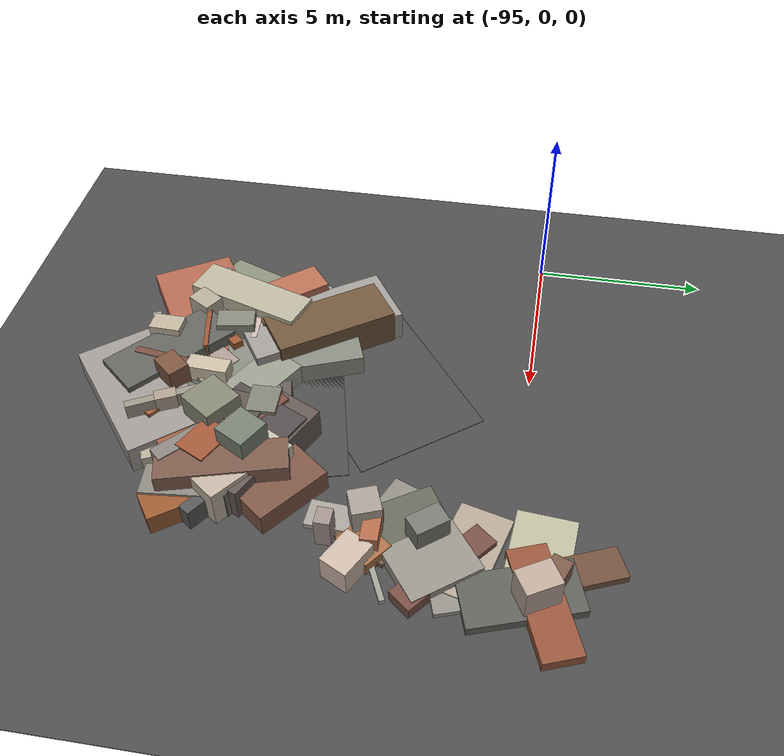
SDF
<sdf version="1.6">
 <world name="navitas_arena">
  <model name="ground_plane">
   <static>true</static>
   <link name="link">
    <collision name="collision">
     <geometry><plane><normal>0 0 1</normal><size>400 400</size></plane></geometry>
     <surface><friction><ode><mu>0.800</mu><mu2>0.800</mu2></ode></friction></surface>
    </collision>
    <visual name="visual">
     <cast_shadows>false</cast_shadows>
     <geometry><plane><normal>0 0 1</normal><size>400 400</size></plane></geometry>
     <material>
      <specular>0.04 0.04 0.04 1</specular>
      <script>
       <uri>file://media/materials/scripts/navitas_asphalt.material</uri>
       <name>Navitas/RealArenaAsphalt</name>
      </script>
     </material>
    </visual>
   </link>
  </model>
  <model name="gd_kolay">
   <static>true</static>
   <pose>-90.000 0.000 0.010 0 0 0.000</pose>
   <link name="link">
    <collision name="col"><geometry><box><size>50.000 50.000 0.020</size></box></geometry></collision>
    <visual name="vis">
     <geometry><box><size>50.000 50.000 0.020</size></box></geometry>
     <material>
      <specular>0.04 0.04 0.04 1</specular>
      <script>
       <uri>file://media/materials/scripts/navitas_asphalt.material</uri>
       <name>Navitas/RealArenaAsphalt</name>
      </script>
     </material>
    </visual>
   </link>
  </model>
  <model name="road_kolay_2_5">
   <static>true</static>
   <pose>-88.152 -7.431 0.040 0 0 1.818</pose>
   <link name="link">
    <collision name="col"><geometry><box><size>4.540 6.000 0.020</size></box></geometry></collision>
    <visual name="vis">
     <geometry><box><size>4.540 6.000 0.020</size></box></geometry>
     <material>
      <specular>0.04 0.04 0.04 1</specular>
      <script>
       <uri>file://media/materials/scripts/navitas_asphalt.material</uri>
       <name>Navitas/RealArenaAsphalt</name>
      </script>
     </material>
    </visual>
   </link>
  </model>
  <model name="road_kolay_2_6">
   <static>true</static>
   <pose>-89.501 -4.500 0.040 0 0 2.229</pose>
   <link name="link">
    <collision name="col"><geometry><box><size>3.850 6.000 0.020</size></box></geometry></collision>
    <visual name="vis">
     <geometry><box><size>3.850 6.000 0.020</size></box></geometry>
     <material>
      <specular>0.04 0.04 0.04 1</specular>
      <script>
       <uri>file://media/materials/scripts/navitas_asphalt.material</uri>
       <name>Navitas/RealArenaAsphalt</name>
      </script>
     </material>
    </visual>
   </link>
  </model>
  <model name="blk_kolay_2_0_0">
   <static>true</static>
   <pose>-85.315 -7.943 0.000 0 0 0</pose>
   <link name="link">
    <collision name="col_0">
     <pose>-0.198 0.999 0.305 0.000 0.000 2.167</pose>
     <geometry><box><size>0.587 0.983 0.610</size></box></geometry>
    </collision>
    <visual name="vis_0">
     <pose>-0.198 0.999 0.305 0.000 0.000 2.167</pose>
     <geometry><box><size>0.587 0.983 0.610</size></box></geometry>
     <material>
      <ambient>0.66 0.42 0.31 1</ambient>
      <diffuse>0.71 0.46 0.33 1</diffuse>
      <specular>0.05 0.05 0.045 1</specular>
     </material>
    </visual>
    <collision name="col_1">
     <pose>0.869 -0.635 0.352 0.000 0.000 1.660</pose>
     <geometry><box><size>2.179 0.947 0.704</size></box></geometry>
    </collision>
    <visual name="vis_1">
     <pose>0.869 -0.635 0.352 0.000 0.000 1.660</pose>
     <geometry><box><size>2.179 0.947 0.704</size></box></geometry>
     <material>
      <ambient>0.50 0.49 0.46 1</ambient>
      <diffuse>0.54 0.53 0.50 1</diffuse>
      <specular>0.05 0.05 0.045 1</specular>
     </material>
    </visual>
    <collision name="col_2">
     <pose>0.815 0.293 0.340 0.000 0.000 2.552</pose>
     <geometry><box><size>2.303 0.361 0.681</size></box></geometry>
    </collision>
    <visual name="vis_2">
     <pose>0.815 0.293 0.340 0.000 0.000 2.552</pose>
     <geometry><box><size>2.303 0.361 0.681</size></box></geometry>
     <material>
      <ambient>0.32 0.31 0.31 1</ambient>
      <diffuse>0.34 0.34 0.33 1</diffuse>
      <specular>0.05 0.05 0.045 1</specular>
     </material>
    </visual>
    <collision name="col_3">
     <pose>0.039 -0.951 0.614 0.000 0.000 2.403</pose>
     <geometry><box><size>1.432 0.464 1.229</size></box></geometry>
    </collision>
    <visual name="vis_3">
     <pose>0.039 -0.951 0.614 0.000 0.000 2.403</pose>
     <geometry><box><size>1.432 0.464 1.229</size></box></geometry>
     <material>
      <ambient>0.50 0.48 0.47 1</ambient>
      <diffuse>0.54 0.52 0.50 1</diffuse>
      <specular>0.05 0.05 0.045 1</specular>
     </material>
    </visual>
    <collision name="col_4">
     <pose>-0.143 -0.994 0.421 0.000 0.000 3.793</pose>
     <geometry><box><size>1.599 1.050 0.842</size></box></geometry>
    </collision>
    <visual name="vis_4">
     <pose>-0.143 -0.994 0.421 0.000 0.000 3.793</pose>
     <geometry><box><size>1.599 1.050 0.842</size></box></geometry>
     <material>
      <ambient>0.60 0.34 0.24 1</ambient>
      <diffuse>0.65 0.37 0.26 1</diffuse>
      <specular>0.05 0.05 0.045 1</specular>
     </material>
    </visual>
    <collision name="col_5">
     <pose>0.865 0.361 0.454 0.000 0.000 4.247</pose>
     <geometry><box><size>0.927 0.609 0.908</size></box></geometry>
    </collision>
    <visual name="vis_5">
     <pose>0.865 0.361 0.454 0.000 0.000 4.247</pose>
     <geometry><box><size>0.927 0.609 0.908</size></box></geometry>
     <material>
      <ambient>0.38 0.38 0.35 1</ambient>
      <diffuse>0.41 0.41 0.38 1</diffuse>
      <specular>0.05 0.05 0.045 1</specular>
     </material>
    </visual>
    <collision name="col_6">
     <pose>0.225 0.403 0.340 0.000 0.000 2.451</pose>
     <geometry><box><size>0.533 0.520 0.681</size></box></geometry>
    </collision>
    <visual name="vis_6">
     <pose>0.225 0.403 0.340 0.000 0.000 2.451</pose>
     <geometry><box><size>0.533 0.520 0.681</size></box></geometry>
     <material>
      <ambient>0.40 0.25 0.18 1</ambient>
      <diffuse>0.43 0.27 0.19 1</diffuse>
      <specular>0.05 0.05 0.045 1</specular>
     </material>
    </visual>
    <collision name="col_7">
     <pose>0.365 0.301 0.597 0.000 0.000 1.843</pose>
     <geometry><box><size>3.477 1.040 1.195</size></box></geometry>
    </collision>
    <visual name="vis_7">
     <pose>0.365 0.301 0.597 0.000 0.000 1.843</pose>
     <geometry><box><size>3.477 1.040 1.195</size></box></geometry>
     <material>
      <ambient>0.46 0.33 0.28 1</ambient>
      <diffuse>0.49 0.36 0.30 1</diffuse>
      <specular>0.05 0.05 0.045 1</specular>
     </material>
    </visual>
   </link>
  </model>
  <model name="blk_kolay_2_0_1">
   <static>true</static>
   <pose>-86.365 -8.200 0.000 0 0 0</pose>
   <link name="link">
    <collision name="col_0">
     <pose>1.562 0.671 0.571 0.000 0.000 2.498</pose>
     <geometry><box><size>1.777 1.294 1.142</size></box></geometry>
    </collision>
    <visual name="vis_0">
     <pose>1.562 0.671 0.571 0.000 0.000 2.498</pose>
     <geometry><box><size>1.777 1.294 1.142</size></box></geometry>
     <material>
      <ambient>0.70 0.65 0.59 1</ambient>
      <diffuse>0.76 0.70 0.64 1</diffuse>
      <specular>0.05 0.05 0.045 1</specular>
     </material>
    </visual>
    <collision name="col_1">
     <pose>1.915 0.052 0.316 0.000 0.000 2.199</pose>
     <geometry><box><size>3.105 0.964 0.631</size></box></geometry>
    </collision>
    <visual name="vis_1">
     <pose>1.915 0.052 0.316 0.000 0.000 2.199</pose>
     <geometry><box><size>3.105 0.964 0.631</size></box></geometry>
     <material>
      <ambient>0.57 0.33 0.18 1</ambient>
      <diffuse>0.61 0.36 0.20 1</diffuse>
      <specular>0.05 0.05 0.045 1</specular>
     </material>
    </visual>
    <collision name="col_2">
     <pose>0.878 1.244 0.348 0.000 0.000 0.914</pose>
     <geometry><box><size>3.395 2.181 0.697</size></box></geometry>
    </collision>
    <visual name="vis_2">
     <pose>0.878 1.244 0.348 0.000 0.000 0.914</pose>
     <geometry><box><size>3.395 2.181 0.697</size></box></geometry>
     <material>
      <ambient>0.47 0.32 0.25 1</ambient>
      <diffuse>0.50 0.34 0.27 1</diffuse>
      <specular>0.05 0.05 0.045 1</specular>
     </material>
    </visual>
    <collision name="col_3">
     <pose>-0.402 -1.551 0.668 0.000 0.000 2.013</pose>
     <geometry><box><size>0.596 0.353 1.335</size></box></geometry>
    </collision>
    <visual name="vis_3">
     <pose>-0.402 -1.551 0.668 0.000 0.000 2.013</pose>
     <geometry><box><size>0.596 0.353 1.335</size></box></geometry>
     <material>
      <ambient>0.63 0.57 0.52 1</ambient>
      <diffuse>0.68 0.62 0.56 1</diffuse>
      <specular>0.05 0.05 0.045 1</specular>
     </material>
    </visual>
    <collision name="col_4">
     <pose>-0.777 1.104 0.597 0.000 0.000 1.609</pose>
     <geometry><box><size>0.827 0.941 1.194</size></box></geometry>
    </collision>
    <visual name="vis_4">
     <pose>-0.777 1.104 0.597 0.000 0.000 1.609</pose>
     <geometry><box><size>0.827 0.941 1.194</size></box></geometry>
     <material>
      <ambient>0.46 0.47 0.42 1</ambient>
      <diffuse>0.50 0.51 0.45 1</diffuse>
      <specular>0.05 0.05 0.045 1</specular>
     </material>
    </visual>
    <collision name="col_5">
     <pose>-0.308 -0.213 0.792 0.000 0.000 0.963</pose>
     <geometry><box><size>1.133 1.122 1.585</size></box></geometry>
    </collision>
    <visual name="vis_5">
     <pose>-0.308 -0.213 0.792 0.000 0.000 0.963</pose>
     <geometry><box><size>1.133 1.122 1.585</size></box></geometry>
     <material>
      <ambient>0.50 0.49 0.43 1</ambient>
      <diffuse>0.53 0.53 0.46 1</diffuse>
      <specular>0.05 0.05 0.045 1</specular>
     </material>
    </visual>
    <collision name="col_6">
     <pose>1.522 -0.399 0.469 0.000 0.000 2.256</pose>
     <geometry><box><size>0.531 0.427 0.938</size></box></geometry>
    </collision>
    <visual name="vis_6">
     <pose>1.522 -0.399 0.469 0.000 0.000 2.256</pose>
     <geometry><box><size>0.531 0.427 0.938</size></box></geometry>
     <material>
      <ambient>0.30 0.32 0.30 1</ambient>
      <diffuse>0.32 0.35 0.33 1</diffuse>
      <specular>0.05 0.05 0.045 1</specular>
     </material>
    </visual>
    <collision name="col_7">
     <pose>-0.463 -1.381 0.657 0.000 0.000 2.070</pose>
     <geometry><box><size>2.567 0.230 1.313</size></box></geometry>
    </collision>
    <visual name="vis_7">
     <pose>-0.463 -1.381 0.657 0.000 0.000 2.070</pose>
     <geometry><box><size>2.567 0.230 1.313</size></box></geometry>
     <material>
      <ambient>0.56 0.54 0.49 1</ambient>
      <diffuse>0.61 0.58 0.53 1</diffuse>
      <specular>0.05 0.05 0.045 1</specular>
     </material>
    </visual>
   </link>
  </model>
  <model name="blk_kolay_2_0_2">
   <static>true</static>
   <pose>-90.827 -7.162 0.000 0 0 0</pose>
   <link name="link">
    <collision name="col_0">
     <pose>-1.071 -0.148 0.598 0.000 0.000 2.263</pose>
     <geometry><box><size>1.614 0.990 1.197</size></box></geometry>
    </collision>
    <visual name="vis_0">
     <pose>-1.071 -0.148 0.598 0.000 0.000 2.263</pose>
     <geometry><box><size>1.614 0.990 1.197</size></box></geometry>
     <material>
      <ambient>0.66 0.41 0.31 1</ambient>
      <diffuse>0.72 0.44 0.33 1</diffuse>
      <specular>0.05 0.05 0.045 1</specular>
     </material>
    </visual>
    <collision name="col_1">
     <pose>-0.842 0.537 0.400 0.000 0.000 2.474</pose>
     <geometry><box><size>1.370 0.626 0.800</size></box></geometry>
    </collision>
    <visual name="vis_1">
     <pose>-0.842 0.537 0.400 0.000 0.000 2.474</pose>
     <geometry><box><size>1.370 0.626 0.800</size></box></geometry>
     <material>
      <ambient>0.62 0.60 0.55 1</ambient>
      <diffuse>0.67 0.64 0.60 1</diffuse>
      <specular>0.05 0.05 0.045 1</specular>
     </material>
    </visual>
    <collision name="col_2">
     <pose>-0.028 0.129 0.527 0.000 0.000 2.124</pose>
     <geometry><box><size>2.256 0.281 1.053</size></box></geometry>
    </collision>
    <visual name="vis_2">
     <pose>-0.028 0.129 0.527 0.000 0.000 2.124</pose>
     <geometry><box><size>2.256 0.281 1.053</size></box></geometry>
     <material>
      <ambient>0.57 0.35 0.24 1</ambient>
      <diffuse>0.62 0.37 0.26 1</diffuse>
      <specular>0.05 0.05 0.045 1</specular>
     </material>
    </visual>
    <collision name="col_3">
     <pose>-0.038 0.749 0.477 0.000 0.000 2.163</pose>
     <geometry><box><size>4.559 1.956 0.955</size></box></geometry>
    </collision>
    <visual name="vis_3">
     <pose>-0.038 0.749 0.477 0.000 0.000 2.163</pose>
     <geometry><box><size>4.559 1.956 0.955</size></box></geometry>
     <material>
      <ambient>0.59 0.56 0.55 1</ambient>
      <diffuse>0.63 0.61 0.59 1</diffuse>
      <specular>0.05 0.05 0.045 1</specular>
     </material>
    </visual>
    <collision name="col_4">
     <pose>0.099 1.082 0.564 0.000 0.000 2.175</pose>
     <geometry><box><size>3.584 1.512 1.128</size></box></geometry>
    </collision>
    <visual name="vis_4">
     <pose>0.099 1.082 0.564 0.000 0.000 2.175</pose>
     <geometry><box><size>3.584 1.512 1.128</size></box></geometry>
     <material>
      <ambient>0.41 0.31 0.21 1</ambient>
      <diffuse>0.44 0.34 0.23 1</diffuse>
      <specular>0.05 0.05 0.045 1</specular>
     </material>
    </visual>
    <collision name="col_5">
     <pose>0.827 0.143 0.334 0.000 0.000 1.944</pose>
     <geometry><box><size>3.807 2.317 0.668</size></box></geometry>
    </collision>
    <visual name="vis_5">
     <pose>0.827 0.143 0.334 0.000 0.000 1.944</pose>
     <geometry><box><size>3.807 2.317 0.668</size></box></geometry>
     <material>
      <ambient>0.49 0.50 0.46 1</ambient>
      <diffuse>0.53 0.54 0.50 1</diffuse>
      <specular>0.05 0.05 0.045 1</specular>
     </material>
    </visual>
    <collision name="col_6">
     <pose>0.119 0.605 0.304 0.000 0.000 2.405</pose>
     <geometry><box><size>2.572 1.061 0.608</size></box></geometry>
    </collision>
    <visual name="vis_6">
     <pose>0.119 0.605 0.304 0.000 0.000 2.405</pose>
     <geometry><box><size>2.572 1.061 0.608</size></box></geometry>
     <material>
      <ambient>0.64 0.37 0.26 1</ambient>
      <diffuse>0.69 0.40 0.28 1</diffuse>
      <specular>0.05 0.05 0.045 1</specular>
     </material>
    </visual>
    <collision name="col_7">
     <pose>0.007 1.074 0.523 0.000 0.000 2.752</pose>
     <geometry><box><size>1.055 1.062 1.046</size></box></geometry>
    </collision>
    <visual name="vis_7">
     <pose>0.007 1.074 0.523 0.000 0.000 2.752</pose>
     <geometry><box><size>1.055 1.062 1.046</size></box></geometry>
     <material>
      <ambient>0.36 0.35 0.32 1</ambient>
      <diffuse>0.39 0.38 0.34 1</diffuse>
      <specular>0.05 0.05 0.045 1</specular>
     </material>
    </visual>
   </link>
  </model>
  <model name="blk_kolay_2_0_3">
   <static>true</static>
   <pose>-89.910 -9.430 0.000 0 0 0</pose>
   <link name="link">
    <collision name="col_0">
     <pose>0.355 -1.213 0.636 0.000 0.000 1.539</pose>
     <geometry><box><size>0.918 0.594 1.272</size></box></geometry>
    </collision>
    <visual name="vis_0">
     <pose>0.355 -1.213 0.636 0.000 0.000 1.539</pose>
     <geometry><box><size>0.918 0.594 1.272</size></box></geometry>
     <material>
      <ambient>0.70 0.65 0.57 1</ambient>
      <diffuse>0.75 0.70 0.61 1</diffuse>
      <specular>0.05 0.05 0.045 1</specular>
     </material>
    </visual>
    <collision name="col_1">
     <pose>-1.874 -0.137 0.391 0.000 0.000 0.237</pose>
     <geometry><box><size>1.966 0.217 0.782</size></box></geometry>
    </collision>
    <visual name="vis_1">
     <pose>-1.874 -0.137 0.391 0.000 0.000 0.237</pose>
     <geometry><box><size>1.966 0.217 0.782</size></box></geometry>
     <material>
      <ambient>0.58 0.58 0.55 1</ambient>
      <diffuse>0.62 0.62 0.60 1</diffuse>
      <specular>0.05 0.05 0.045 1</specular>
     </material>
    </visual>
    <collision name="col_2">
     <pose>0.850 -1.314 0.511 0.000 0.000 0.388</pose>
     <geometry><box><size>2.415 0.251 1.022</size></box></geometry>
    </collision>
    <visual name="vis_2">
     <pose>0.850 -1.314 0.511 0.000 0.000 0.388</pose>
     <geometry><box><size>2.415 0.251 1.022</size></box></geometry>
     <material>
      <ambient>0.61 0.62 0.56 1</ambient>
      <diffuse>0.65 0.67 0.60 1</diffuse>
      <specular>0.05 0.05 0.045 1</specular>
     </material>
    </visual>
    <collision name="col_3">
     <pose>0.552 -1.300 0.428 0.000 0.000 1.087</pose>
     <geometry><box><size>0.572 0.509 0.856</size></box></geometry>
    </collision>
    <visual name="vis_3">
     <pose>0.552 -1.300 0.428 0.000 0.000 1.087</pose>
     <geometry><box><size>0.572 0.509 0.856</size></box></geometry>
     <material>
      <ambient>0.60 0.57 0.51 1</ambient>
      <diffuse>0.65 0.61 0.55 1</diffuse>
      <specular>0.05 0.05 0.045 1</specular>
     </material>
    </visual>
    <collision name="col_4">
     <pose>0.014 0.416 0.449 0.000 0.000 0.817</pose>
     <geometry><box><size>1.391 0.309 0.897</size></box></geometry>
    </collision>
    <visual name="vis_4">
     <pose>0.014 0.416 0.449 0.000 0.000 0.817</pose>
     <geometry><box><size>1.391 0.309 0.897</size></box></geometry>
     <material>
      <ambient>0.57 0.32 0.19 1</ambient>
      <diffuse>0.61 0.35 0.21 1</diffuse>
      <specular>0.05 0.05 0.045 1</specular>
     </material>
    </visual>
    <collision name="col_5">
     <pose>1.192 0.280 0.345 0.000 0.000 0.934</pose>
     <geometry><box><size>1.019 1.299 0.690</size></box></geometry>
    </collision>
    <visual name="vis_5">
     <pose>1.192 0.280 0.345 0.000 0.000 0.934</pose>
     <geometry><box><size>1.019 1.299 0.690</size></box></geometry>
     <material>
      <ambient>0.62 0.57 0.54 1</ambient>
      <diffuse>0.67 0.61 0.58 1</diffuse>
      <specular>0.05 0.05 0.045 1</specular>
     </material>
    </visual>
    <collision name="col_6">
     <pose>-0.678 1.271 0.482 0.000 0.000 0.057</pose>
     <geometry><box><size>1.885 0.176 0.963</size></box></geometry>
    </collision>
    <visual name="vis_6">
     <pose>-0.678 1.271 0.482 0.000 0.000 0.057</pose>
     <geometry><box><size>1.885 0.176 0.963</size></box></geometry>
     <material>
      <ambient>0.74 0.67 0.64 1</ambient>
      <diffuse>0.80 0.73 0.69 1</diffuse>
      <specular>0.05 0.05 0.045 1</specular>
     </material>
    </visual>
   </link>
  </model>
  <model name="blk_kolay_2_0_4">
   <static>true</static>
   <pose>-90.844 -9.308 0.000 0 0 0</pose>
   <link name="link">
    <collision name="col_0">
     <pose>-0.708 0.701 0.408 0.000 0.000 0.052</pose>
     <geometry><box><size>1.131 1.153 0.817</size></box></geometry>
    </collision>
    <visual name="vis_0">
     <pose>-0.708 0.701 0.408 0.000 0.000 0.052</pose>
     <geometry><box><size>1.131 1.153 0.817</size></box></geometry>
     <material>
      <ambient>0.56 0.33 0.19 1</ambient>
      <diffuse>0.61 0.35 0.20 1</diffuse>
      <specular>0.05 0.05 0.045 1</specular>
     </material>
    </visual>
    <collision name="col_1">
     <pose>0.097 0.009 0.363 0.000 0.000 -0.740</pose>
     <geometry><box><size>0.874 0.904 0.726</size></box></geometry>
    </collision>
    <visual name="vis_1">
     <pose>0.097 0.009 0.363 0.000 0.000 -0.740</pose>
     <geometry><box><size>0.874 0.904 0.726</size></box></geometry>
     <material>
      <ambient>0.36 0.33 0.31 1</ambient>
      <diffuse>0.39 0.36 0.33 1</diffuse>
      <specular>0.05 0.05 0.045 1</specular>
     </material>
    </visual>
    <collision name="col_2">
     <pose>-0.382 0.743 0.632 0.000 0.000 1.254</pose>
     <geometry><box><size>3.546 1.147 1.264</size></box></geometry>
    </collision>
    <visual name="vis_2">
     <pose>-0.382 0.743 0.632 0.000 0.000 1.254</pose>
     <geometry><box><size>3.546 1.147 1.264</size></box></geometry>
     <material>
      <ambient>0.67 0.66 0.57 1</ambient>
      <diffuse>0.73 0.71 0.62 1</diffuse>
      <specular>0.05 0.05 0.045 1</specular>
     </material>
    </visual>
    <collision name="col_3">
     <pose>-0.196 -0.611 0.330 0.000 0.000 0.556</pose>
     <geometry><box><size>4.096 2.383 0.659</size></box></geometry>
    </collision>
    <visual name="vis_3">
     <pose>-0.196 -0.611 0.330 0.000 0.000 0.556</pose>
     <geometry><box><size>4.096 2.383 0.659</size></box></geometry>
     <material>
      <ambient>0.65 0.38 0.29 1</ambient>
      <diffuse>0.70 0.41 0.32 1</diffuse>
      <specular>0.05 0.05 0.045 1</specular>
     </material>
    </visual>
    <collision name="col_4">
     <pose>0.551 -0.304 0.555 0.000 0.000 0.210</pose>
     <geometry><box><size>2.780 0.140 1.110</size></box></geometry>
    </collision>
    <visual name="vis_4">
     <pose>0.551 -0.304 0.555 0.000 0.000 0.210</pose>
     <geometry><box><size>2.780 0.140 1.110</size></box></geometry>
     <material>
      <ambient>0.56 0.31 0.19 1</ambient>
      <diffuse>0.60 0.33 0.21 1</diffuse>
      <specular>0.05 0.05 0.045 1</specular>
     </material>
    </visual>
    <collision name="col_5">
     <pose>-1.008 0.065 0.320 0.000 0.000 -0.364</pose>
     <geometry><box><size>2.549 1.748 0.639</size></box></geometry>
    </collision>
    <visual name="vis_5">
     <pose>-1.008 0.065 0.320 0.000 0.000 -0.364</pose>
     <geometry><box><size>2.549 1.748 0.639</size></box></geometry>
     <material>
      <ambient>0.50 0.52 0.44 1</ambient>
      <diffuse>0.54 0.56 0.48 1</diffuse>
      <specular>0.05 0.05 0.045 1</specular>
     </material>
    </visual>
    <collision name="col_6">
     <pose>0.749 0.584 0.613 0.000 0.000 0.176</pose>
     <geometry><box><size>0.652 1.096 1.226</size></box></geometry>
    </collision>
    <visual name="vis_6">
     <pose>0.749 0.584 0.613 0.000 0.000 0.176</pose>
     <geometry><box><size>0.652 1.096 1.226</size></box></geometry>
     <material>
      <ambient>0.49 0.49 0.45 1</ambient>
      <diffuse>0.53 0.53 0.48 1</diffuse>
      <specular>0.05 0.05 0.045 1</specular>
     </material>
    </visual>
    <collision name="col_7">
     <pose>0.096 -0.540 0.644 0.000 0.000 -0.552</pose>
     <geometry><box><size>0.610 0.781 1.288</size></box></geometry>
    </collision>
    <visual name="vis_7">
     <pose>0.096 -0.540 0.644 0.000 0.000 -0.552</pose>
     <geometry><box><size>0.610 0.781 1.288</size></box></geometry>
     <material>
      <ambient>0.66 0.62 0.56 1</ambient>
      <diffuse>0.71 0.67 0.60 1</diffuse>
      <specular>0.05 0.05 0.045 1</specular>
     </material>
    </visual>
    <collision name="col_8">
     <pose>0.297 0.216 0.383 0.000 0.000 1.120</pose>
     <geometry><box><size>1.297 1.384 0.766</size></box></geometry>
    </collision>
    <visual name="vis_8">
     <pose>0.297 0.216 0.383 0.000 0.000 1.120</pose>
     <geometry><box><size>1.297 1.384 0.766</size></box></geometry>
     <material>
      <ambient>0.62 0.37 0.24 1</ambient>
      <diffuse>0.67 0.40 0.26 1</diffuse>
      <specular>0.05 0.05 0.045 1</specular>
     </material>
    </visual>
   </link>
  </model>
  <model name="blk_kolay_2_0_6">
   <static>true</static>
   <pose>-87.660 -9.921 0.000 0 0 0</pose>
   <link name="link">
    <collision name="col_0">
     <pose>-0.029 0.122 0.423 0.000 0.000 1.356</pose>
     <geometry><box><size>1.251 0.238 0.846</size></box></geometry>
    </collision>
    <visual name="vis_0">
     <pose>-0.029 0.122 0.423 0.000 0.000 1.356</pose>
     <geometry><box><size>1.251 0.238 0.846</size></box></geometry>
     <material>
      <ambient>0.41 0.44 0.40 1</ambient>
      <diffuse>0.45 0.47 0.44 1</diffuse>
      <specular>0.05 0.05 0.045 1</specular>
     </material>
    </visual>
    <collision name="col_1">
     <pose>0.309 -0.803 0.433 0.000 0.000 3.836</pose>
     <geometry><box><size>4.184 2.290 0.866</size></box></geometry>
    </collision>
    <visual name="vis_1">
     <pose>0.309 -0.803 0.433 0.000 0.000 3.836</pose>
     <geometry><box><size>4.184 2.290 0.866</size></box></geometry>
     <material>
      <ambient>0.57 0.55 0.54 1</ambient>
      <diffuse>0.62 0.60 0.58 1</diffuse>
      <specular>0.05 0.05 0.045 1</specular>
     </material>
    </visual>
    <collision name="col_2">
     <pose>0.428 -0.147 0.399 0.000 0.000 2.132</pose>
     <geometry><box><size>0.543 0.953 0.797</size></box></geometry>
    </collision>
    <visual name="vis_2">
     <pose>0.428 -0.147 0.399 0.000 0.000 2.132</pose>
     <geometry><box><size>0.543 0.953 0.797</size></box></geometry>
     <material>
      <ambient>0.62 0.57 0.53 1</ambient>
      <diffuse>0.66 0.61 0.58 1</diffuse>
      <specular>0.05 0.05 0.045 1</specular>
     </material>
    </visual>
    <collision name="col_3">
     <pose>-0.724 -0.222 0.533 0.000 0.000 1.424</pose>
     <geometry><box><size>2.241 0.231 1.065</size></box></geometry>
    </collision>
    <visual name="vis_3">
     <pose>-0.724 -0.222 0.533 0.000 0.000 1.424</pose>
     <geometry><box><size>2.241 0.231 1.065</size></box></geometry>
     <material>
      <ambient>0.44 0.30 0.24 1</ambient>
      <diffuse>0.47 0.32 0.26 1</diffuse>
      <specular>0.05 0.05 0.045 1</specular>
     </material>
    </visual>
    <collision name="col_4">
     <pose>-0.150 0.018 0.740 0.000 0.000 2.440</pose>
     <geometry><box><size>0.622 0.811 1.480</size></box></geometry>
    </collision>
    <visual name="vis_4">
     <pose>-0.150 0.018 0.740 0.000 0.000 2.440</pose>
     <geometry><box><size>0.622 0.811 1.480</size></box></geometry>
     <material>
      <ambient>0.45 0.31 0.23 1</ambient>
      <diffuse>0.49 0.33 0.25 1</diffuse>
      <specular>0.05 0.05 0.045 1</specular>
     </material>
    </visual>
    <collision name="col_5">
     <pose>-0.632 0.881 0.544 0.000 0.000 1.511</pose>
     <geometry><box><size>1.211 0.518 1.088</size></box></geometry>
    </collision>
    <visual name="vis_5">
     <pose>-0.632 0.881 0.544 0.000 0.000 1.511</pose>
     <geometry><box><size>1.211 0.518 1.088</size></box></geometry>
     <material>
      <ambient>0.73 0.69 0.60 1</ambient>
      <diffuse>0.79 0.74 0.65 1</diffuse>
      <specular>0.05 0.05 0.045 1</specular>
     </material>
    </visual>
    <collision name="col_6">
     <pose>0.299 0.738 0.283 0.000 0.000 1.290</pose>
     <geometry><box><size>3.106 1.468 0.566</size></box></geometry>
    </collision>
    <visual name="vis_6">
     <pose>0.299 0.738 0.283 0.000 0.000 1.290</pose>
     <geometry><box><size>3.106 1.468 0.566</size></box></geometry>
     <material>
      <ambient>0.34 0.34 0.32 1</ambient>
      <diffuse>0.37 0.37 0.35 1</diffuse>
      <specular>0.05 0.05 0.045 1</specular>
     </material>
    </visual>
    <collision name="col_7">
     <pose>-1.179 -0.441 0.522 0.000 0.000 2.441</pose>
     <geometry><box><size>3.529 1.466 1.045</size></box></geometry>
    </collision>
    <visual name="vis_7">
     <pose>-1.179 -0.441 0.522 0.000 0.000 2.441</pose>
     <geometry><box><size>3.529 1.466 1.045</size></box></geometry>
     <material>
      <ambient>0.36 0.36 0.34 1</ambient>
      <diffuse>0.39 0.39 0.37 1</diffuse>
      <specular>0.05 0.05 0.045 1</specular>
     </material>
    </visual>
    <collision name="col_8">
     <pose>0.106 -0.214 0.281 0.000 0.000 2.706</pose>
     <geometry><box><size>1.290 0.542 0.561</size></box></geometry>
    </collision>
    <visual name="vis_8">
     <pose>0.106 -0.214 0.281 0.000 0.000 2.706</pose>
     <geometry><box><size>1.290 0.542 0.561</size></box></geometry>
     <material>
      <ambient>0.47 0.31 0.24 1</ambient>
      <diffuse>0.50 0.33 0.26 1</diffuse>
      <specular>0.05 0.05 0.045 1</specular>
     </material>
    </visual>
    <collision name="col_9">
     <pose>1.201 -0.178 0.490 0.000 0.000 2.541</pose>
     <geometry><box><size>0.369 0.282 0.980</size></box></geometry>
    </collision>
    <visual name="vis_9">
     <pose>1.201 -0.178 0.490 0.000 0.000 2.541</pose>
     <geometry><box><size>0.369 0.282 0.980</size></box></geometry>
     <material>
      <ambient>0.59 0.36 0.21 1</ambient>
      <diffuse>0.64 0.39 0.23 1</diffuse>
      <specular>0.05 0.05 0.045 1</specular>
     </material>
    </visual>
   </link>
  </model>
  <model name="blk_kolay_2_0_7">
   <static>true</static>
   <pose>-85.875 -8.017 0.000 0 0 0</pose>
   <link name="link">
    <collision name="col_0">
     <pose>-0.009 1.018 0.499 0.000 0.000 2.694</pose>
     <geometry><box><size>3.435 1.583 0.999</size></box></geometry>
    </collision>
    <visual name="vis_0">
     <pose>-0.009 1.018 0.499 0.000 0.000 2.694</pose>
     <geometry><box><size>3.435 1.583 0.999</size></box></geometry>
     <material>
      <ambient>0.37 0.32 0.30 1</ambient>
      <diffuse>0.40 0.35 0.33 1</diffuse>
      <specular>0.05 0.05 0.045 1</specular>
     </material>
    </visual>
    <collision name="col_1">
     <pose>0.044 0.988 0.568 0.000 0.000 1.059</pose>
     <geometry><box><size>2.036 0.853 1.136</size></box></geometry>
    </collision>
    <visual name="vis_1">
     <pose>0.044 0.988 0.568 0.000 0.000 1.059</pose>
     <geometry><box><size>2.036 0.853 1.136</size></box></geometry>
     <material>
      <ambient>0.71 0.70 0.63 1</ambient>
      <diffuse>0.77 0.75 0.68 1</diffuse>
      <specular>0.05 0.05 0.045 1</specular>
     </material>
    </visual>
    <collision name="col_2">
     <pose>-0.899 0.368 0.584 0.000 0.000 1.397</pose>
     <geometry><box><size>1.200 1.054 1.169</size></box></geometry>
    </collision>
    <visual name="vis_2">
     <pose>-0.899 0.368 0.584 0.000 0.000 1.397</pose>
     <geometry><box><size>1.200 1.054 1.169</size></box></geometry>
     <material>
      <ambient>0.34 0.30 0.28 1</ambient>
      <diffuse>0.37 0.33 0.30 1</diffuse>
      <specular>0.05 0.05 0.045 1</specular>
     </material>
    </visual>
    <collision name="col_3">
     <pose>-0.603 0.796 0.547 0.000 0.000 2.541</pose>
     <geometry><box><size>2.272 0.330 1.094</size></box></geometry>
    </collision>
    <visual name="vis_3">
     <pose>-0.603 0.796 0.547 0.000 0.000 2.541</pose>
     <geometry><box><size>2.272 0.330 1.094</size></box></geometry>
     <material>
      <ambient>0.45 0.30 0.23 1</ambient>
      <diffuse>0.48 0.32 0.25 1</diffuse>
      <specular>0.05 0.05 0.045 1</specular>
     </material>
    </visual>
    <collision name="col_4">
     <pose>-0.133 1.092 0.466 0.000 0.000 0.739</pose>
     <geometry><box><size>0.921 1.199 0.932</size></box></geometry>
    </collision>
    <visual name="vis_4">
     <pose>-0.133 1.092 0.466 0.000 0.000 0.739</pose>
     <geometry><box><size>0.921 1.199 0.932</size></box></geometry>
     <material>
      <ambient>0.52 0.48 0.47 1</ambient>
      <diffuse>0.56 0.51 0.51 1</diffuse>
      <specular>0.05 0.05 0.045 1</specular>
     </material>
    </visual>
    <collision name="col_5">
     <pose>-0.655 0.821 0.542 0.000 0.000 1.128</pose>
     <geometry><box><size>2.353 1.554 1.083</size></box></geometry>
    </collision>
    <visual name="vis_5">
     <pose>-0.655 0.821 0.542 0.000 0.000 1.128</pose>
     <geometry><box><size>2.353 1.554 1.083</size></box></geometry>
     <material>
      <ambient>0.31 0.28 0.27 1</ambient>
      <diffuse>0.33 0.30 0.30 1</diffuse>
      <specular>0.05 0.05 0.045 1</specular>
     </material>
    </visual>
    <collision name="col_6">
     <pose>0.403 -0.240 0.624 0.000 0.000 2.682</pose>
     <geometry><box><size>1.185 0.933 1.248</size></box></geometry>
    </collision>
    <visual name="vis_6">
     <pose>0.403 -0.240 0.624 0.000 0.000 2.682</pose>
     <geometry><box><size>1.185 0.933 1.248</size></box></geometry>
     <material>
      <ambient>0.59 0.32 0.20 1</ambient>
      <diffuse>0.63 0.34 0.22 1</diffuse>
      <specular>0.05 0.05 0.045 1</specular>
     </material>
    </visual>
    <collision name="col_7">
     <pose>-0.747 -0.446 0.331 0.000 0.000 1.993</pose>
     <geometry><box><size>4.001 1.828 0.662</size></box></geometry>
    </collision>
    <visual name="vis_7">
     <pose>-0.747 -0.446 0.331 0.000 0.000 1.993</pose>
     <geometry><box><size>4.001 1.828 0.662</size></box></geometry>
     <material>
      <ambient>0.67 0.63 0.55 1</ambient>
      <diffuse>0.72 0.68 0.60 1</diffuse>
      <specular>0.05 0.05 0.045 1</specular>
     </material>
    </visual>
    <collision name="col_8">
     <pose>0.021 -0.053 0.405 0.000 0.000 0.780</pose>
     <geometry><box><size>0.528 0.361 0.811</size></box></geometry>
    </collision>
    <visual name="vis_8">
     <pose>0.021 -0.053 0.405 0.000 0.000 0.780</pose>
     <geometry><box><size>0.528 0.361 0.811</size></box></geometry>
     <material>
      <ambient>0.46 0.33 0.27 1</ambient>
      <diffuse>0.49 0.36 0.29 1</diffuse>
      <specular>0.05 0.05 0.045 1</specular>
     </material>
    </visual>
    <collision name="col_9">
     <pose>0.247 0.770 0.881 0.000 0.000 2.636</pose>
     <geometry><box><size>0.962 0.944 1.762</size></box></geometry>
    </collision>
    <visual name="vis_9">
     <pose>0.247 0.770 0.881 0.000 0.000 2.636</pose>
     <geometry><box><size>0.962 0.944 1.762</size></box></geometry>
     <material>
      <ambient>0.44 0.46 0.41 1</ambient>
      <diffuse>0.47 0.50 0.44 1</diffuse>
      <specular>0.05 0.05 0.045 1</specular>
     </material>
    </visual>
   </link>
  </model>
  <model name="blk_kolay_2_0_8">
   <static>true</static>
   <pose>-86.724 -7.929 0.000 0 0 0</pose>
   <link name="link">
    <collision name="col_0">
     <pose>0.573 1.002 0.467 0.000 0.000 2.179</pose>
     <geometry><box><size>0.522 0.333 0.934</size></box></geometry>
    </collision>
    <visual name="vis_0">
     <pose>0.573 1.002 0.467 0.000 0.000 2.179</pose>
     <geometry><box><size>0.522 0.333 0.934</size></box></geometry>
     <material>
      <ambient>0.66 0.61 0.55 1</ambient>
      <diffuse>0.71 0.66 0.60 1</diffuse>
      <specular>0.05 0.05 0.045 1</specular>
     </material>
    </visual>
    <collision name="col_1">
     <pose>0.494 1.294 0.394 0.000 0.000 1.207</pose>
     <geometry><box><size>0.227 0.503 0.789</size></box></geometry>
    </collision>
    <visual name="vis_1">
     <pose>0.494 1.294 0.394 0.000 0.000 1.207</pose>
     <geometry><box><size>0.227 0.503 0.789</size></box></geometry>
     <material>
      <ambient>0.64 0.37 0.28 1</ambient>
      <diffuse>0.69 0.40 0.31 1</diffuse>
      <specular>0.05 0.05 0.045 1</specular>
     </material>
    </visual>
    <collision name="col_2">
     <pose>-0.970 0.055 0.327 0.000 0.000 1.802</pose>
     <geometry><box><size>2.660 0.851 0.655</size></box></geometry>
    </collision>
    <visual name="vis_2">
     <pose>-0.970 0.055 0.327 0.000 0.000 1.802</pose>
     <geometry><box><size>2.660 0.851 0.655</size></box></geometry>
     <material>
      <ambient>0.37 0.33 0.33 1</ambient>
      <diffuse>0.40 0.36 0.36 1</diffuse>
      <specular>0.05 0.05 0.045 1</specular>
     </material>
    </visual>
    <collision name="col_3">
     <pose>-0.222 -0.103 0.366 0.000 0.000 1.476</pose>
     <geometry><box><size>3.661 1.054 0.733</size></box></geometry>
    </collision>
    <visual name="vis_3">
     <pose>-0.222 -0.103 0.366 0.000 0.000 1.476</pose>
     <geometry><box><size>3.661 1.054 0.733</size></box></geometry>
     <material>
      <ambient>0.33 0.29 0.30 1</ambient>
      <diffuse>0.35 0.32 0.32 1</diffuse>
      <specular>0.05 0.05 0.045 1</specular>
     </material>
    </visual>
    <collision name="col_4">
     <pose>-0.594 -0.247 0.343 0.000 0.000 2.629</pose>
     <geometry><box><size>4.544 1.267 0.685</size></box></geometry>
    </collision>
    <visual name="vis_4">
     <pose>-0.594 -0.247 0.343 0.000 0.000 2.629</pose>
     <geometry><box><size>4.544 1.267 0.685</size></box></geometry>
     <material>
      <ambient>0.56 0.56 0.51 1</ambient>
      <diffuse>0.60 0.61 0.55 1</diffuse>
      <specular>0.05 0.05 0.045 1</specular>
     </material>
    </visual>
    <collision name="col_5">
     <pose>1.025 -0.858 0.304 0.000 0.000 1.026</pose>
     <geometry><box><size>0.562 0.358 0.607</size></box></geometry>
    </collision>
    <visual name="vis_5">
     <pose>1.025 -0.858 0.304 0.000 0.000 1.026</pose>
     <geometry><box><size>0.562 0.358 0.607</size></box></geometry>
     <material>
      <ambient>0.47 0.34 0.27 1</ambient>
      <diffuse>0.51 0.36 0.29 1</diffuse>
      <specular>0.05 0.05 0.045 1</specular>
     </material>
    </visual>
   </link>
  </model>
  <model name="deb_kolay_97">
   <static>true</static>
   <pose>-83.833 -4.139 0.000 0 0 0</pose>
   <link name="link">
    <collision name="col_0">
     <pose>-0.411 0.409 0.585 0.000 0.000 1.940</pose>
     <geometry><box><size>0.781 0.787 1.170</size></box></geometry>
    </collision>
    <visual name="vis_0">
     <pose>-0.411 0.409 0.585 0.000 0.000 1.940</pose>
     <geometry><box><size>0.781 0.787 1.170</size></box></geometry>
     <material>
      <ambient>0.61 0.57 0.53 1</ambient>
      <diffuse>0.66 0.62 0.58 1</diffuse>
      <specular>0.05 0.05 0.045 1</specular>
     </material>
    </visual>
    <collision name="col_1">
     <pose>0.316 0.500 0.216 0.000 0.000 0.919</pose>
     <geometry><box><size>1.148 0.864 0.432</size></box></geometry>
    </collision>
    <visual name="vis_1">
     <pose>0.316 0.500 0.216 0.000 0.000 0.919</pose>
     <geometry><box><size>1.148 0.864 0.432</size></box></geometry>
     <material>
      <ambient>0.62 0.40 0.27 1</ambient>
      <diffuse>0.67 0.44 0.29 1</diffuse>
      <specular>0.05 0.05 0.045 1</specular>
     </material>
    </visual>
    <collision name="col_2">
     <pose>-0.469 0.012 0.090 0.000 0.000 1.511</pose>
     <geometry><box><size>2.337 0.807 0.179</size></box></geometry>
    </collision>
    <visual name="vis_2">
     <pose>-0.469 0.012 0.090 0.000 0.000 1.511</pose>
     <geometry><box><size>2.337 0.807 0.179</size></box></geometry>
     <material>
      <ambient>0.60 0.58 0.55 1</ambient>
      <diffuse>0.65 0.63 0.60 1</diffuse>
      <specular>0.05 0.05 0.045 1</specular>
     </material>
    </visual>
    <collision name="col_3">
     <pose>0.051 -0.550 0.467 0.000 0.000 -0.013</pose>
     <geometry><box><size>0.506 0.425 0.934</size></box></geometry>
    </collision>
    <visual name="vis_3">
     <pose>0.051 -0.550 0.467 0.000 0.000 -0.013</pose>
     <geometry><box><size>0.506 0.425 0.934</size></box></geometry>
     <material>
      <ambient>0.59 0.53 0.50 1</ambient>
      <diffuse>0.64 0.57 0.55 1</diffuse>
      <specular>0.05 0.05 0.045 1</specular>
     </material>
    </visual>
   </link>
  </model>
  <model name="deb_kolay_130">
   <static>true</static>
   <pose>-83.316 -3.924 0.000 0 0 0</pose>
   <link name="link">
    <collision name="col_0">
     <pose>0.308 -0.355 0.156 0.000 0.000 2.482</pose>
     <geometry><box><size>0.456 0.451 0.313</size></box></geometry>
    </collision>
    <visual name="vis_0">
     <pose>0.308 -0.355 0.156 0.000 0.000 2.482</pose>
     <geometry><box><size>0.456 0.451 0.313</size></box></geometry>
     <material>
      <ambient>0.76 0.69 0.62 1</ambient>
      <diffuse>0.82 0.75 0.67 1</diffuse>
      <specular>0.05 0.05 0.045 1</specular>
     </material>
    </visual>
    <collision name="col_1">
     <pose>-0.466 0.450 0.436 0.000 0.000 1.602</pose>
     <geometry><box><size>0.464 0.997 0.873</size></box></geometry>
    </collision>
    <visual name="vis_1">
     <pose>-0.466 0.450 0.436 0.000 0.000 1.602</pose>
     <geometry><box><size>0.464 0.997 0.873</size></box></geometry>
     <material>
      <ambient>0.66 0.40 0.27 1</ambient>
      <diffuse>0.71 0.43 0.30 1</diffuse>
      <specular>0.05 0.05 0.045 1</specular>
     </material>
    </visual>
    <collision name="col_2">
     <pose>0.400 -0.009 0.399 0.000 0.000 2.664</pose>
     <geometry><box><size>1.101 0.819 0.799</size></box></geometry>
    </collision>
    <visual name="vis_2">
     <pose>0.400 -0.009 0.399 0.000 0.000 2.664</pose>
     <geometry><box><size>1.101 0.819 0.799</size></box></geometry>
     <material>
      <ambient>0.75 0.68 0.62 1</ambient>
      <diffuse>0.81 0.73 0.67 1</diffuse>
      <specular>0.05 0.05 0.045 1</specular>
     </material>
    </visual>
    <collision name="col_3">
     <pose>0.244 0.495 0.108 0.000 0.000 2.269</pose>
     <geometry><box><size>0.276 0.167 0.215</size></box></geometry>
    </collision>
    <visual name="vis_3">
     <pose>0.244 0.495 0.108 0.000 0.000 2.269</pose>
     <geometry><box><size>0.276 0.167 0.215</size></box></geometry>
     <material>
      <ambient>0.49 0.44 0.40 1</ambient>
      <diffuse>0.53 0.48 0.43 1</diffuse>
      <specular>0.05 0.05 0.045 1</specular>
     </material>
    </visual>
    <collision name="col_4">
     <pose>-0.620 0.414 0.083 0.000 0.000 1.104</pose>
     <geometry><box><size>1.529 1.144 0.165</size></box></geometry>
    </collision>
    <visual name="vis_4">
     <pose>-0.620 0.414 0.083 0.000 0.000 1.104</pose>
     <geometry><box><size>1.529 1.144 0.165</size></box></geometry>
     <material>
      <ambient>0.43 0.31 0.25 1</ambient>
      <diffuse>0.46 0.34 0.27 1</diffuse>
      <specular>0.05 0.05 0.045 1</specular>
     </material>
    </visual>
    <collision name="col_5">
     <pose>0.218 0.536 0.080 0.000 0.000 3.585</pose>
     <geometry><box><size>2.214 0.146 0.159</size></box></geometry>
    </collision>
    <visual name="vis_5">
     <pose>0.218 0.536 0.080 0.000 0.000 3.585</pose>
     <geometry><box><size>2.214 0.146 0.159</size></box></geometry>
     <material>
      <ambient>0.57 0.58 0.54 1</ambient>
      <diffuse>0.62 0.63 0.58 1</diffuse>
      <specular>0.05 0.05 0.045 1</specular>
     </material>
    </visual>
   </link>
  </model>
  <model name="deb_kolay_146">
   <static>true</static>
   <pose>-83.779 -2.660 0.000 0 0 0</pose>
   <link name="link">
    <collision name="col_0">
     <pose>-0.284 0.561 0.504 0.000 0.000 0.668</pose>
     <geometry><box><size>0.628 0.955 1.008</size></box></geometry>
    </collision>
    <visual name="vis_0">
     <pose>-0.284 0.561 0.504 0.000 0.000 0.668</pose>
     <geometry><box><size>0.628 0.955 1.008</size></box></geometry>
     <material>
      <ambient>0.44 0.44 0.42 1</ambient>
      <diffuse>0.47 0.48 0.45 1</diffuse>
      <specular>0.05 0.05 0.045 1</specular>
     </material>
    </visual>
    <collision name="col_1">
     <pose>-0.654 -0.554 0.115 0.000 0.000 2.736</pose>
     <geometry><box><size>2.477 1.028 0.230</size></box></geometry>
    </collision>
    <visual name="vis_1">
     <pose>-0.654 -0.554 0.115 0.000 0.000 2.736</pose>
     <geometry><box><size>2.477 1.028 0.230</size></box></geometry>
     <material>
      <ambient>0.52 0.51 0.47 1</ambient>
      <diffuse>0.56 0.55 0.51 1</diffuse>
      <specular>0.05 0.05 0.045 1</specular>
     </material>
    </visual>
    <collision name="col_2">
     <pose>-0.045 0.866 0.069 0.000 0.000 0.998</pose>
     <geometry><box><size>1.626 0.168 0.139</size></box></geometry>
    </collision>
    <visual name="vis_2">
     <pose>-0.045 0.866 0.069 0.000 0.000 0.998</pose>
     <geometry><box><size>1.626 0.168 0.139</size></box></geometry>
     <material>
      <ambient>0.64 0.59 0.53 1</ambient>
      <diffuse>0.69 0.64 0.58 1</diffuse>
      <specular>0.05 0.05 0.045 1</specular>
     </material>
    </visual>
    <collision name="col_3">
     <pose>-0.720 -0.101 0.156 0.000 0.000 2.144</pose>
     <geometry><box><size>2.060 1.308 0.311</size></box></geometry>
    </collision>
    <visual name="vis_3">
     <pose>-0.720 -0.101 0.156 0.000 0.000 2.144</pose>
     <geometry><box><size>2.060 1.308 0.311</size></box></geometry>
     <material>
      <ambient>0.37 0.38 0.33 1</ambient>
      <diffuse>0.40 0.41 0.36 1</diffuse>
      <specular>0.05 0.05 0.045 1</specular>
     </material>
    </visual>
   </link>
  </model>
  <model name="deb_kolay_194">
   <static>true</static>
   <pose>-83.324 0.805 0.000 0 0 0</pose>
   <link name="link">
    <collision name="col_0">
     <pose>-0.633 -0.176 0.079 0.000 0.000 3.318</pose>
     <geometry><box><size>1.521 0.151 0.157</size></box></geometry>
    </collision>
    <visual name="vis_0">
     <pose>-0.633 -0.176 0.079 0.000 0.000 3.318</pose>
     <geometry><box><size>1.521 0.151 0.157</size></box></geometry>
     <material>
      <ambient>0.54 0.53 0.47 1</ambient>
      <diffuse>0.59 0.57 0.51 1</diffuse>
      <specular>0.05 0.05 0.045 1</specular>
     </material>
    </visual>
    <collision name="col_1">
     <pose>-0.183 0.563 0.121 0.000 0.000 1.966</pose>
     <geometry><box><size>3.121 0.917 0.242</size></box></geometry>
    </collision>
    <visual name="vis_1">
     <pose>-0.183 0.563 0.121 0.000 0.000 1.966</pose>
     <geometry><box><size>3.121 0.917 0.242</size></box></geometry>
     <material>
      <ambient>0.42 0.29 0.22 1</ambient>
      <diffuse>0.45 0.32 0.24 1</diffuse>
      <specular>0.05 0.05 0.045 1</specular>
     </material>
    </visual>
    <collision name="col_2">
     <pose>0.191 0.335 0.428 0.000 0.000 2.760</pose>
     <geometry><box><size>0.914 0.530 0.856</size></box></geometry>
    </collision>
    <visual name="vis_2">
     <pose>0.191 0.335 0.428 0.000 0.000 2.760</pose>
     <geometry><box><size>0.914 0.530 0.856</size></box></geometry>
     <material>
      <ambient>0.46 0.33 0.27 1</ambient>
      <diffuse>0.49 0.36 0.29 1</diffuse>
      <specular>0.05 0.05 0.045 1</specular>
     </material>
    </visual>
    <collision name="col_3">
     <pose>0.610 -0.064 0.597 0.000 0.000 3.665</pose>
     <geometry><box><size>0.748 0.988 1.194</size></box></geometry>
    </collision>
    <visual name="vis_3">
     <pose>0.610 -0.064 0.597 0.000 0.000 3.665</pose>
     <geometry><box><size>0.748 0.988 1.194</size></box></geometry>
     <material>
      <ambient>0.69 0.62 0.57 1</ambient>
      <diffuse>0.75 0.67 0.61 1</diffuse>
      <specular>0.05 0.05 0.045 1</specular>
     </material>
    </visual>
    <collision name="col_4">
     <pose>0.702 0.144 0.163 0.000 0.000 3.506</pose>
     <geometry><box><size>3.163 1.062 0.326</size></box></geometry>
    </collision>
    <visual name="vis_4">
     <pose>0.702 0.144 0.163 0.000 0.000 3.506</pose>
     <geometry><box><size>3.163 1.062 0.326</size></box></geometry>
     <material>
      <ambient>0.54 0.32 0.21 1</ambient>
      <diffuse>0.59 0.34 0.23 1</diffuse>
      <specular>0.05 0.05 0.045 1</specular>
     </material>
    </visual>
    <collision name="col_5">
     <pose>0.545 -0.428 0.141 0.000 0.000 1.895</pose>
     <geometry><box><size>3.027 1.506 0.283</size></box></geometry>
    </collision>
    <visual name="vis_5">
     <pose>0.545 -0.428 0.141 0.000 0.000 1.895</pose>
     <geometry><box><size>3.027 1.506 0.283</size></box></geometry>
     <material>
      <ambient>0.34 0.35 0.33 1</ambient>
      <diffuse>0.37 0.38 0.35 1</diffuse>
      <specular>0.05 0.05 0.045 1</specular>
     </material>
    </visual>
    <collision name="col_6">
     <pose>-0.397 -0.066 0.107 0.000 0.000 3.049</pose>
     <geometry><box><size>2.972 1.612 0.214</size></box></geometry>
    </collision>
    <visual name="vis_6">
     <pose>-0.397 -0.066 0.107 0.000 0.000 3.049</pose>
     <geometry><box><size>2.972 1.612 0.214</size></box></geometry>
     <material>
      <ambient>0.68 0.67 0.57 1</ambient>
      <diffuse>0.74 0.73 0.62 1</diffuse>
      <specular>0.05 0.05 0.045 1</specular>
     </material>
    </visual>
   </link>
  </model>
  <model name="deb_kolay_207">
   <static>true</static>
   <pose>-83.252 -1.287 0.000 0 0 0</pose>
   <link name="link">
    <collision name="col_0">
     <pose>-0.556 0.268 0.094 0.000 0.000 -0.260</pose>
     <geometry><box><size>2.681 1.455 0.189</size></box></geometry>
    </collision>
    <visual name="vis_0">
     <pose>-0.556 0.268 0.094 0.000 0.000 -0.260</pose>
     <geometry><box><size>2.681 1.455 0.189</size></box></geometry>
     <material>
      <ambient>0.66 0.60 0.53 1</ambient>
      <diffuse>0.71 0.65 0.58 1</diffuse>
      <specular>0.05 0.05 0.045 1</specular>
     </material>
    </visual>
    <collision name="col_1">
     <pose>-0.066 -0.595 0.198 0.000 0.000 -0.919</pose>
     <geometry><box><size>2.043 1.691 0.396</size></box></geometry>
    </collision>
    <visual name="vis_1">
     <pose>-0.066 -0.595 0.198 0.000 0.000 -0.919</pose>
     <geometry><box><size>2.043 1.691 0.396</size></box></geometry>
     <material>
      <ambient>0.56 0.54 0.50 1</ambient>
      <diffuse>0.60 0.58 0.54 1</diffuse>
      <specular>0.05 0.05 0.045 1</specular>
     </material>
    </visual>
    <collision name="col_2">
     <pose>0.324 0.036 0.081 0.000 0.000 0.320</pose>
     <geometry><box><size>1.677 1.356 0.161</size></box></geometry>
    </collision>
    <visual name="vis_2">
     <pose>0.324 0.036 0.081 0.000 0.000 0.320</pose>
     <geometry><box><size>1.677 1.356 0.161</size></box></geometry>
     <material>
      <ambient>0.54 0.52 0.50 1</ambient>
      <diffuse>0.58 0.57 0.54 1</diffuse>
      <specular>0.05 0.05 0.045 1</specular>
     </material>
    </visual>
    <collision name="col_3">
     <pose>0.077 -0.276 0.182 0.000 0.000 -0.686</pose>
     <geometry><box><size>2.966 0.733 0.365</size></box></geometry>
    </collision>
    <visual name="vis_3">
     <pose>0.077 -0.276 0.182 0.000 0.000 -0.686</pose>
     <geometry><box><size>2.966 0.733 0.365</size></box></geometry>
     <material>
      <ambient>0.44 0.29 0.25 1</ambient>
      <diffuse>0.47 0.31 0.27 1</diffuse>
      <specular>0.05 0.05 0.045 1</specular>
     </material>
    </visual>
   </link>
  </model>
  <model name="rec_cam">
   <static>true</static>
   <pose>-90.000 0.000 72 0 1.5708 1.5708</pose>
   <link name="link">
    <sensor name="cam" type="camera">
     <camera>
      <horizontal_fov>1.25</horizontal_fov>
      <image><width>1280</width><height>720</height><format>R8G8B8</format></image>
      <clip><near>0.1</near><far>200</far></clip>
      <save enabled="true"><path>/tmp/frames</path></save>
     </camera>
     <always_on>1</always_on>
     <update_rate>12</update_rate>
    </sensor>
   </link>
  </model>
 </world>
</sdf>
